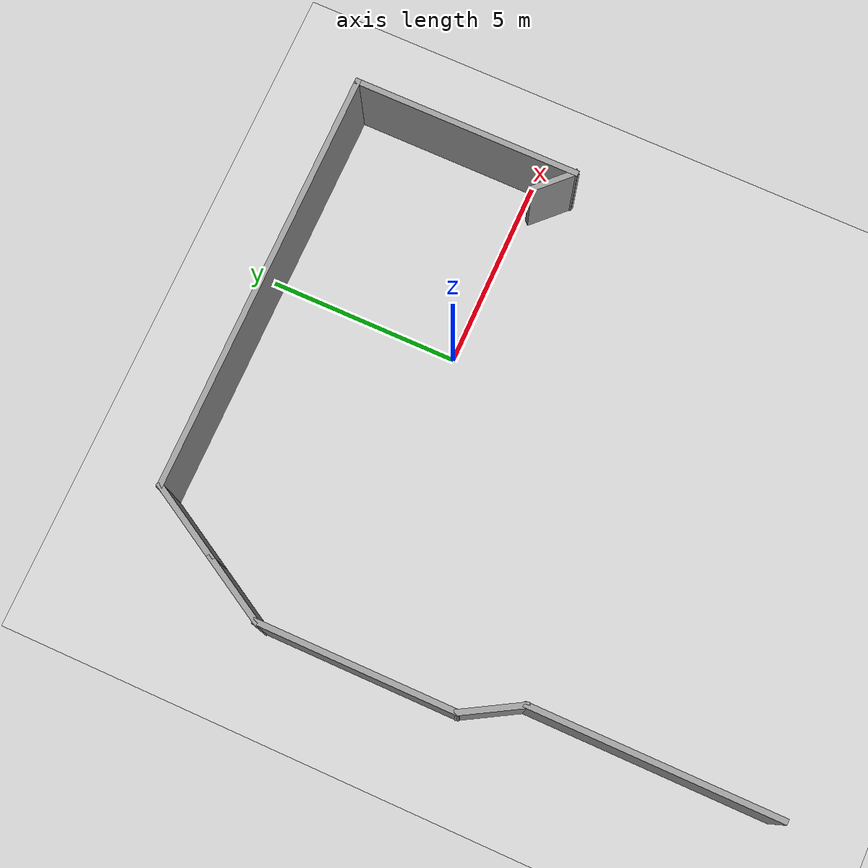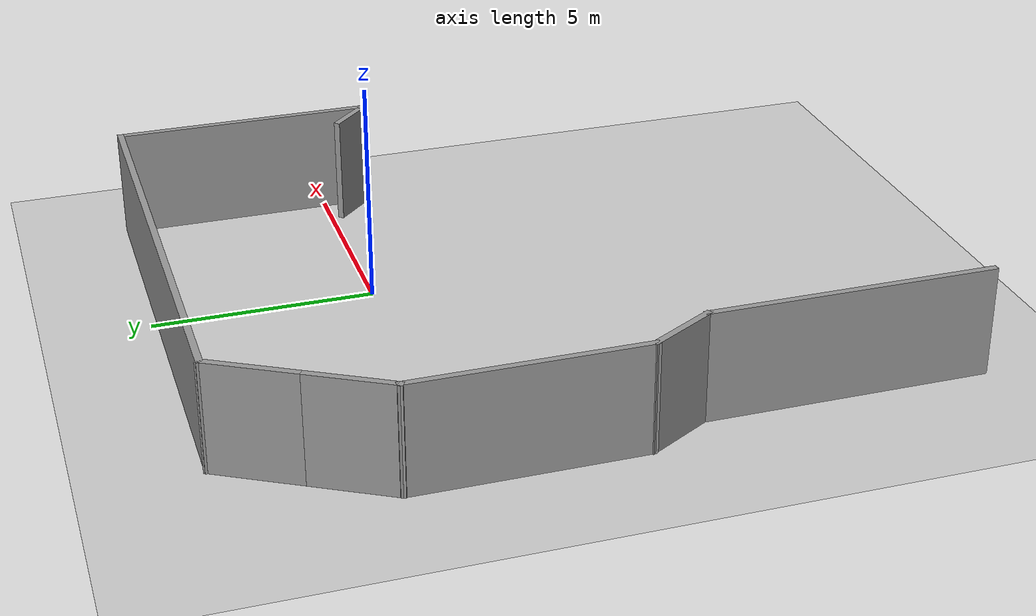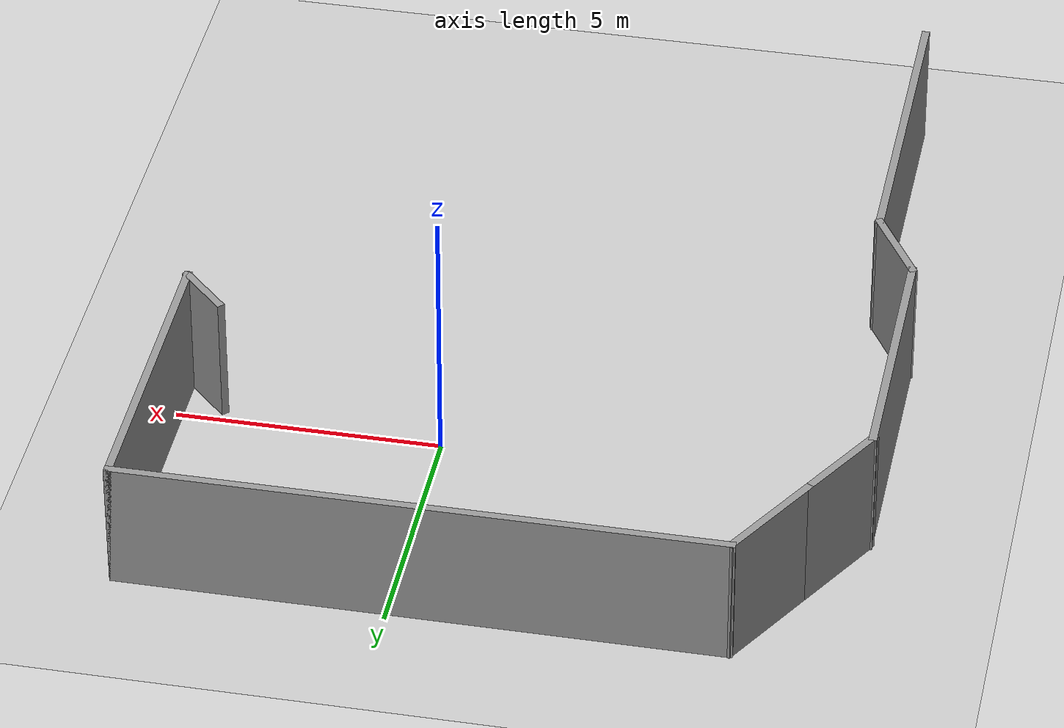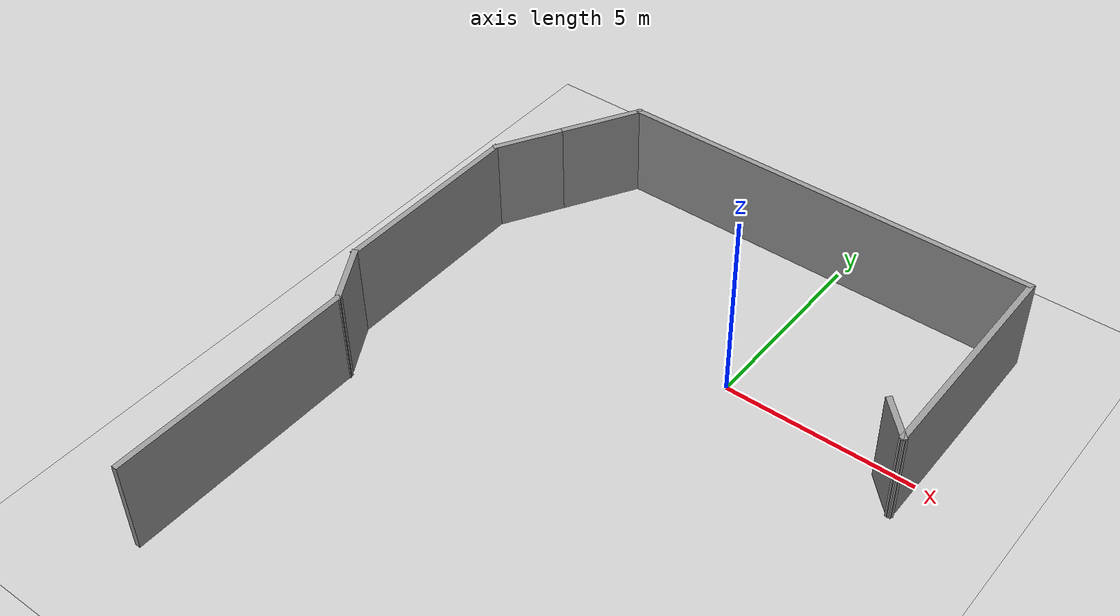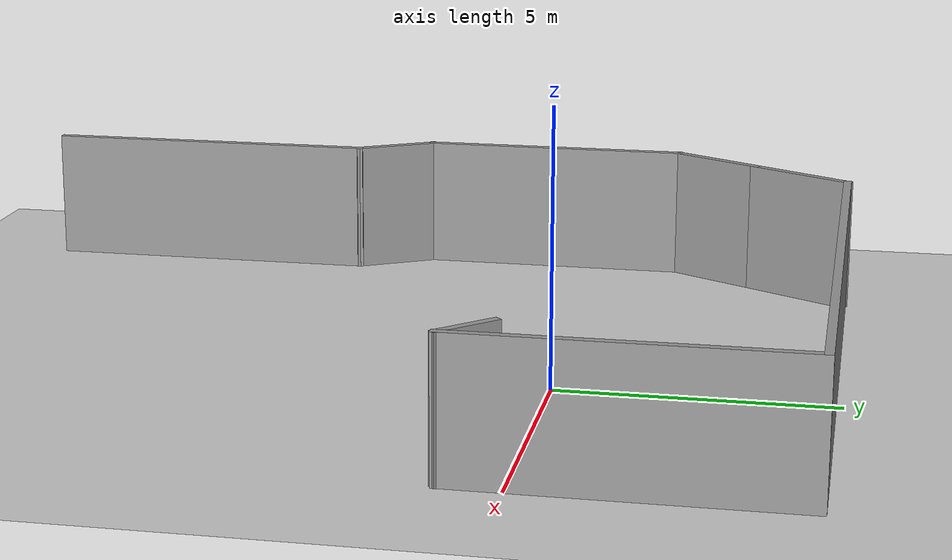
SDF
<?xml version="1.0" ?>
<sdf version="1.6">
  <world name='default'>
    <plugin name="gazebo_ros_state" filename="libgazebo_ros_state.so">
      <ros>
        <namespace>/cartpole</namespace>
        <argument>model_states:=model_states_demo</argument>
        <argument>link_states:=link_states_demo</argument>
      </ros>

      <update_rate>1.0</update_rate>
    </plugin>

	<light name='sun' type='directional'>
      <cast_shadows>1</cast_shadows>
      <pose>0 0 10 0 -0 0</pose>
      <diffuse>0.8 0.8 0.8 1</diffuse>
      <specular>0.2 0.2 0.2 1</specular>
      <attenuation>
        <range>1000</range>
        <constant>0.9</constant>
        <linear>0.01</linear>
        <quadratic>0.001</quadratic>
      </attenuation>
      <direction>-0.5 0.1 -0.9</direction>
      <spot>
        <inner_angle>0</inner_angle>
        <outer_angle>0</outer_angle>
        <falloff>0</falloff>
      </spot>
    </light>

	    <model name='simple_office'>
      <pose>-1.58568 -3.31225 0 0 -0 0</pose>
      <link name='Wall_13'>
        <collision name='Wall_13_Collision'>
          <geometry>
            <box>
              <size>6.5 0.15 2.5</size>
            </box>
          </geometry>
          <pose>0 0 1.25 0 -0 0</pose>
          <max_contacts>10</max_contacts>
          <surface>
            <contact>
              <ode/>
            </contact>
            <bounce/>
            <friction>
              <torsional>
                <ode/>
              </torsional>
              <ode/>
            </friction>
          </surface>
        </collision>
        <visual name='Wall_13_Visual'>
          <pose>0 0 1.25 0 -0 0</pose>
          <geometry>
            <box>
              <size>6.5 0.15 2.5</size>
            </box>
          </geometry>
          <material>
            <script>
              <uri>file://media/materials/scripts/gazebo.material</uri>
              <name>Gazebo/Grey</name>
            </script>
            <ambient>1 1 1 1</ambient>
          </material>
          <meta>
            <layer>0</layer>
          </meta>
        </visual>
        <pose>-5.73931 -4.96695 0 0 -0 1.5708</pose>
        <self_collide>0</self_collide>
        <enable_wind>0</enable_wind>
        <kinematic>0</kinematic>
      </link>
      <link name='Wall_14'>
        <collision name='Wall_14_Collision'>
          <geometry>
            <box>
              <size>1.75 0.15 2.5</size>
            </box>
          </geometry>
          <pose>0 0 1.25 0 -0 0</pose>
          <max_contacts>10</max_contacts>
          <surface>
            <contact>
              <ode/>
            </contact>
            <bounce/>
            <friction>
              <torsional>
                <ode/>
              </torsional>
              <ode/>
            </friction>
          </surface>
        </collision>
        <visual name='Wall_14_Visual'>
          <pose>0 0 1.25 0 -0 0</pose>
          <geometry>
            <box>
              <size>1.75 0.15 2.5</size>
            </box>
          </geometry>
          <material>
            <script>
              <uri>file://media/materials/scripts/gazebo.material</uri>
              <name>Gazebo/Grey</name>
            </script>
            <ambient>1 1 1 1</ambient>
          </material>
          <meta>
            <layer>0</layer>
          </meta>
        </visual>
        <pose>-6.13931 -1.09912 0 0 -0 2.0944</pose>
        <self_collide>0</self_collide>
        <enable_wind>0</enable_wind>
        <kinematic>0</kinematic>
      </link>
      <link name='Wall_15'>
        <collision name='Wall_15_Collision'>
          <geometry>
            <box>
              <size>5.25 0.15 2.5</size>
            </box>
          </geometry>
          <pose>0 0 1.25 0 -0 0</pose>
          <max_contacts>10</max_contacts>
          <surface>
            <contact>
              <ode/>
            </contact>
            <bounce/>
            <friction>
              <torsional>
                <ode/>
              </torsional>
              <ode/>
            </friction>
          </surface>
        </collision>
        <visual name='Wall_15_Visual'>
          <pose>0 0 1.25 0 -0 0</pose>
          <geometry>
            <box>
              <size>5.25 0.15 2.5</size>
            </box>
          </geometry>
          <material>
            <script>
              <uri>file://media/materials/scripts/gazebo.material</uri>
              <name>Gazebo/Grey</name>
            </script>
            <ambient>1 1 1 1</ambient>
          </material>
          <meta>
            <layer>0</layer>
          </meta>
        </visual>
        <pose>-6.53931 2.1437 0 0 -0 1.5708</pose>
        <self_collide>0</self_collide>
        <enable_wind>0</enable_wind>
        <kinematic>0</kinematic>
      </link>
      <link name='Wall_16'>
        <collision name='Wall_16_Collision'>
          <geometry>
            <box>
              <size>2 0.15 2.5</size>
            </box>
          </geometry>
          <pose>0 0 1.25 0 -0 0</pose>
          <max_contacts>10</max_contacts>
          <surface>
            <contact>
              <ode/>
            </contact>
            <bounce/>
            <friction>
              <torsional>
                <ode/>
              </torsional>
              <ode/>
            </friction>
          </surface>
        </collision>
        <visual name='Wall_16_Visual'>
          <pose>0 0 1.25 0 -0 0</pose>
          <geometry>
            <box>
              <size>2 0.15 2.5</size>
            </box>
          </geometry>
          <material>
            <script>
              <uri>file://media/materials/scripts/gazebo.material</uri>
              <name>Gazebo/Grey</name>
            </script>
            <ambient>1 1 1 1</ambient>
          </material>
          <meta>
            <layer>0</layer>
          </meta>
        </visual>
        <pose>-6.07681 5.49477 0 0 -0 1.0472</pose>
        <self_collide>0</self_collide>
        <enable_wind>0</enable_wind>
        <kinematic>0</kinematic>
      </link>
      <link name='Wall_17'>
        <collision name='Wall_17_Collision'>
          <geometry>
            <box>
              <size>2.25 0.15 2.5</size>
            </box>
          </geometry>
          <pose>0 0 1.25 0 -0 0</pose>
          <max_contacts>10</max_contacts>
          <surface>
            <contact>
              <ode/>
            </contact>
            <bounce/>
            <friction>
              <torsional>
                <ode/>
              </torsional>
              <ode/>
            </friction>
          </surface>
        </collision>
        <visual name='Wall_17_Visual'>
          <pose>0 0 1.25 0 -0 0</pose>
          <geometry>
            <box>
              <size>2.25 0.15 2.5</size>
            </box>
          </geometry>
          <material>
            <script>
              <uri>file://media/materials/scripts/gazebo.material</uri>
              <name>Gazebo/Grey</name>
            </script>
            <ambient>1 1 1 1</ambient>
          </material>
          <meta>
            <layer>0</layer>
          </meta>
        </visual>
        <pose>-5.08931 7.20517 0 0 -0 1.0472</pose>
        <self_collide>0</self_collide>
        <enable_wind>0</enable_wind>
        <kinematic>0</kinematic>
      </link>
      <link name='Wall_18'>
        <collision name='Wall_18_Collision'>
          <geometry>
            <box>
              <size>11.25 0.15 2.5</size>
            </box>
          </geometry>
          <pose>0 0 1.25 0 -0 0</pose>
          <max_contacts>10</max_contacts>
          <surface>
            <contact>
              <ode/>
            </contact>
            <bounce/>
            <friction>
              <torsional>
                <ode/>
              </torsional>
              <ode/>
            </friction>
          </surface>
        </collision>
        <visual name='Wall_18_Visual'>
          <pose>0 0 1.25 0 -0 0</pose>
          <geometry>
            <box>
              <size>11.25 0.15 2.5</size>
            </box>
          </geometry>
          <material>
            <script>
              <uri>file://media/materials/scripts/gazebo.material</uri>
              <name>Gazebo/Grey</name>
            </script>
            <ambient>1 1 1 1</ambient>
          </material>
          <meta>
            <layer>0</layer>
          </meta>
        </visual>
        <pose>0.985693 8.11449 0 0 -0 0</pose>
        <self_collide>0</self_collide>
        <enable_wind>0</enable_wind>
        <kinematic>0</kinematic>
      </link>
      <link name='Wall_19'>
        <collision name='Wall_19_Collision'>
          <geometry>
            <box>
              <size>6 0.15 2.5</size>
            </box>
          </geometry>
          <pose>0 0 1.25 0 -0 0</pose>
          <max_contacts>10</max_contacts>
          <surface>
            <contact>
              <ode/>
            </contact>
            <bounce/>
            <friction>
              <torsional>
                <ode/>
              </torsional>
              <ode/>
            </friction>
          </surface>
        </collision>
        <visual name='Wall_19_Visual'>
          <pose>0 0 1.25 0 -0 0</pose>
          <geometry>
            <box>
              <size>6 0.15 2.5</size>
            </box>
          </geometry>
          <material>
            <script>
              <uri>file://media/materials/scripts/gazebo.material</uri>
              <name>Gazebo/Grey</name>
            </script>
            <ambient>1 1 1 1</ambient>
          </material>
          <meta>
            <layer>0</layer>
          </meta>
        </visual>
        <pose>6.53569 5.18949 0 0 -0 -1.5708</pose>
        <self_collide>0</self_collide>
        <enable_wind>0</enable_wind>
        <kinematic>0</kinematic>
      </link>
      <link name='Wall_20'>
        <collision name='Wall_20_Collision'>
          <geometry>
            <box>
              <size>1.25 0.15 2.5</size>
            </box>
          </geometry>
          <pose>0 0 1.25 0 -0 0</pose>
          <max_contacts>10</max_contacts>
          <surface>
            <contact>
              <ode/>
            </contact>
            <bounce/>
            <friction>
              <torsional>
                <ode/>
              </torsional>
              <ode/>
            </friction>
          </surface>
        </collision>
        <visual name='Wall_20_Visual'>
          <pose>0 0 1.25 0 -0 0</pose>
          <geometry>
            <box>
              <size>1.25 0.15 2.5</size>
            </box>
          </geometry>
          <material>
            <script>
              <uri>file://media/materials/scripts/gazebo.material</uri>
              <name>Gazebo/Grey</name>
            </script>
            <ambient>1 1 1 1</ambient>
          </material>
          <meta>
            <layer>0</layer>
          </meta>
        </visual>
        <pose>6.14678 2.6534 0 0 -0 2.35619</pose>
        <self_collide>0</self_collide>
        <enable_wind>0</enable_wind>
        <kinematic>0</kinematic>
      </link>
	  </model>
    <include>
      <uri>model://ground_plane</uri>
    </include>
  </world>
</sdf>
